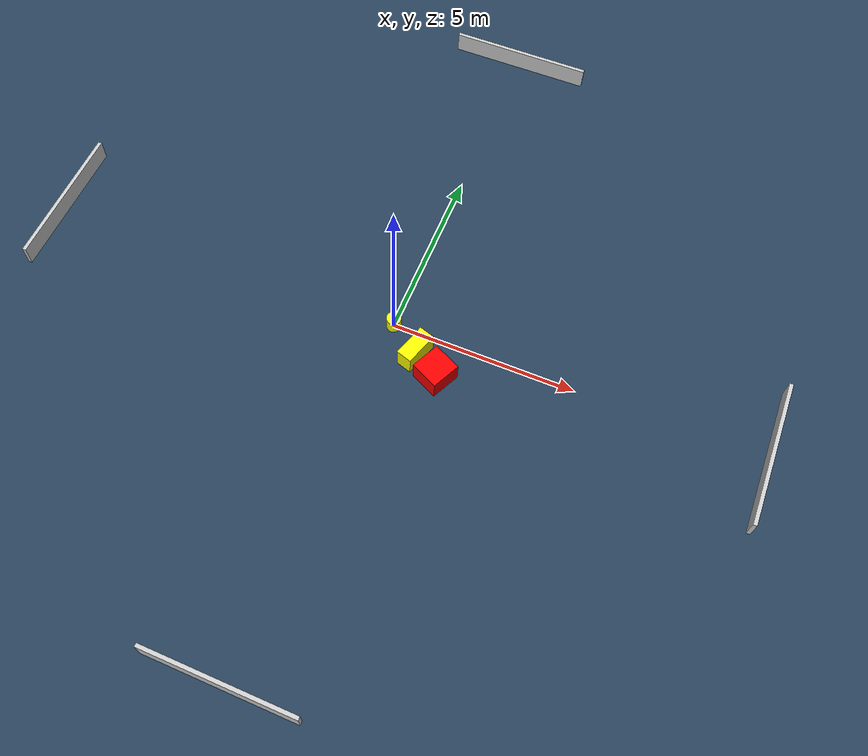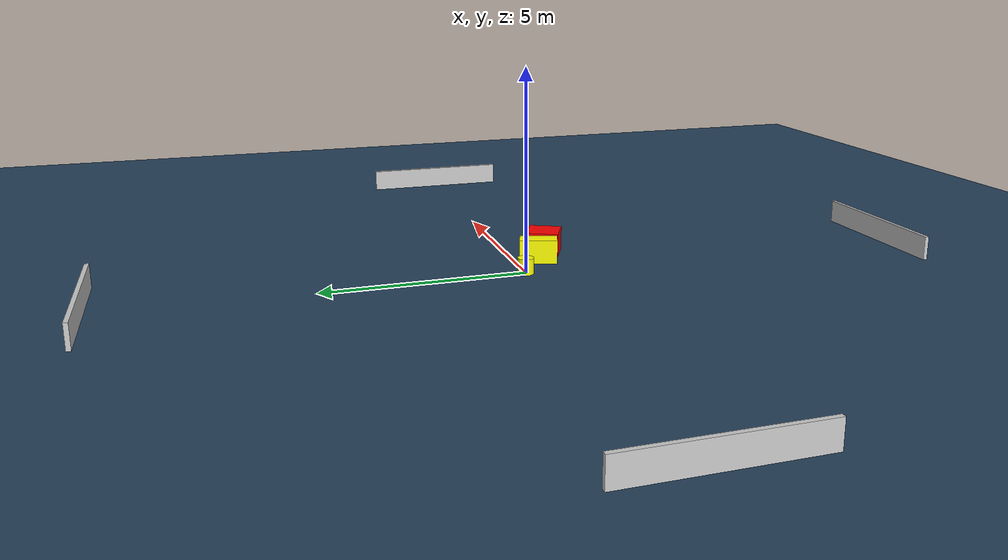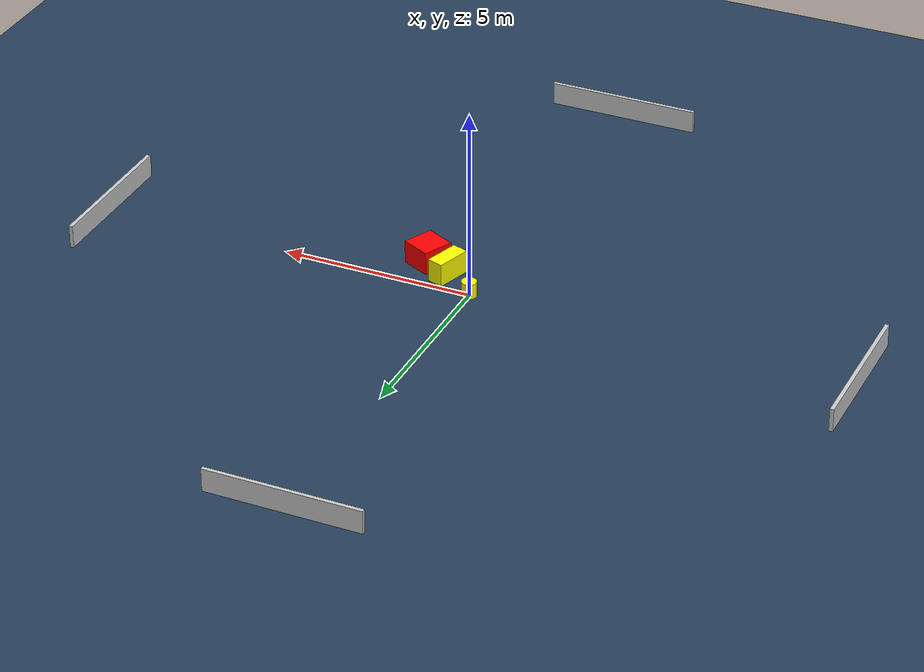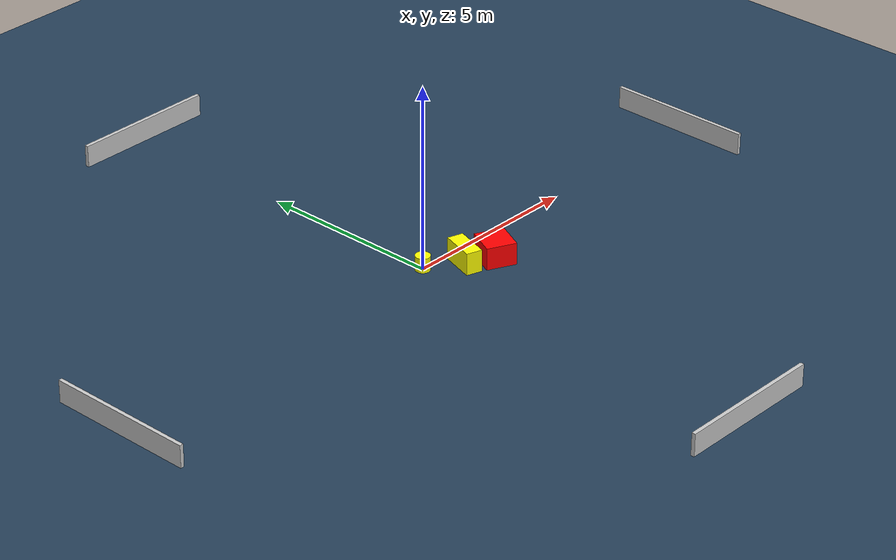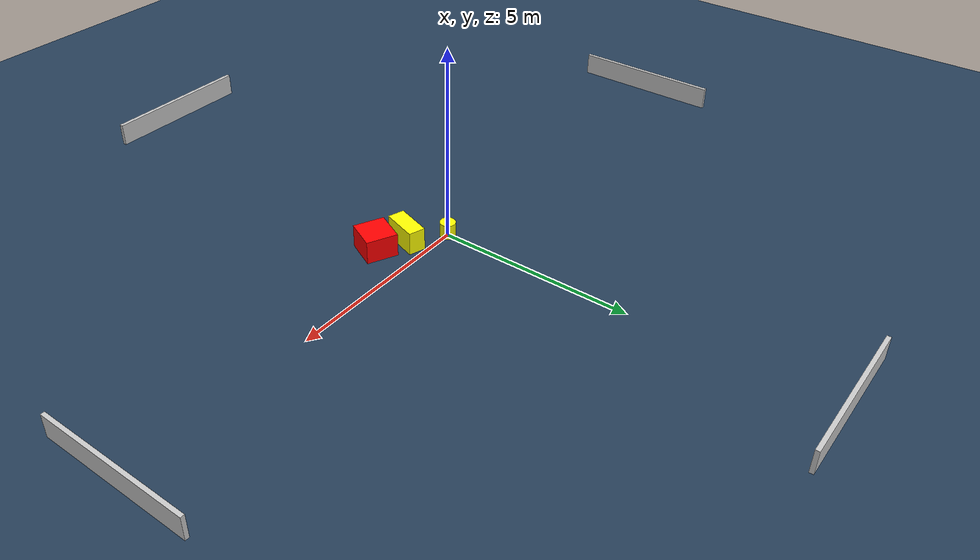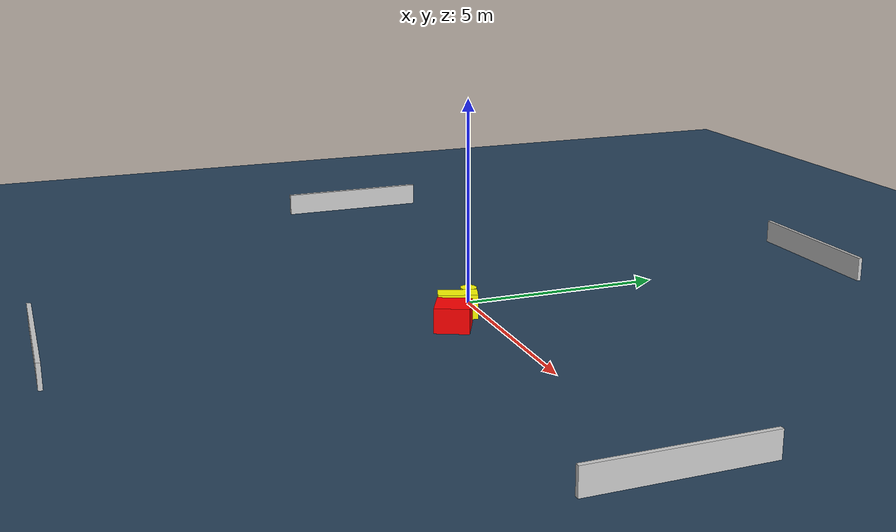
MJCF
<?xml version="1.0" ?>
<mujoco model="generated_environment">
  <option timestep="0.01" integrator="RK4" cone="elliptic"/>
  <default>
    <geom density="1"/>
  </default>
  <asset>
    <texture builtin="gradient" height="3072" name="skybox" rgb1="0.3 0.5 0.7" rgb2="0 0 0" type="skybox" width="512"/>
    <texture builtin="checker" height="300" name="groundplane" rgb1="0.2 0.3 0.4" rgb2="0.1 0.2 0.3" type="2d" width="300"/>
    <material name="groundplane" reflectance="0.2" texrepeat="5 5" texture="groundplane"/>
  </asset>
  <worldbody>
    <light dir="0 0 -1" directional="true" pos="0 0 1.5"/>
    <geom condim="3" friction="0.5 0.005 0.001" material="groundplane" name="floor" pos="0 0 0" size="0 0 0.05" type="plane"/>
    <body name="walls">
      <geom name="wall_1" condim="4" pos="-10.0 0.0 0.3" rgba="0.800000011920929 0.800000011920929 0.800000011920929 1.0" size="0.05 2.0 0.3" type="box"/>
      <geom name="wall_2" condim="4" pos="10.0 0.0 0.3" rgba="0.800000011920929 0.800000011920929 0.800000011920929 1.0" size="0.05 2.0 0.3" type="box"/>
      <geom name="wall_3" condim="4" pos="0.0 -10.0 0.3" rgba="0.800000011920929 0.800000011920929 0.800000011920929 1.0" size="2.0 0.05 0.3" type="box"/>
      <geom name="wall_4" condim="4" pos="0.0 10.0 0.3" rgba="0.800000011920929 0.800000011920929 0.800000011920929 1.0" size="2.0 0.05 0.3" type="box"/>
    </body>
    <body name="robot">
      <joint name="joint_x" type="slide" pos="0 0 0" axis="1 0 0"/>
      <joint name="joint_y" type="slide" pos="0 0 0" axis="0 1 0"/>
      <geom name="robot" type="cylinder" pos="0.0 0.0 0.2" size="0.2 0.2 0.0" mass="5.0" friction="1.0 0.005 0.0001" condim="4" rgba="1.0 1.0 0.0 1.0"/>
    </body>
    <body name="obstacle_1_movable">
      <geom name="obstacle_1_movable" condim="4" pos="0.855478312386177 -0.6066006922947681 0.3" euler="0 0 342.19263480934865" friction="0.0 0.005 0.001" rgba="1.0 1.0 0.0 1.0" size="0.21543531372639935 0.47087266673120304 0.3" type="box" mass="0.1"/>
      <joint type="free"/>
    </body>
    <body name="obstacle_2_static">
      <geom name="obstacle_2_static" condim="4" pos="1.5628172813798802 -0.9847317708176765 0.3" euler="0 0 244.28362567988233" friction="0.0 0.005 0.001" rgba="1.0 0.0 0.0 1.0" size="0.4101910452461142 0.39959613683807216 0.3" type="box"/>
    </body>
  </worldbody>
  <actuator>
    <motor name="actuator_x" joint="joint_x" gear="1" ctrlrange="-1 1"/>
    <motor name="actuator_y" joint="joint_y" gear="1" ctrlrange="-1 1"/>
  </actuator>
</mujoco>
